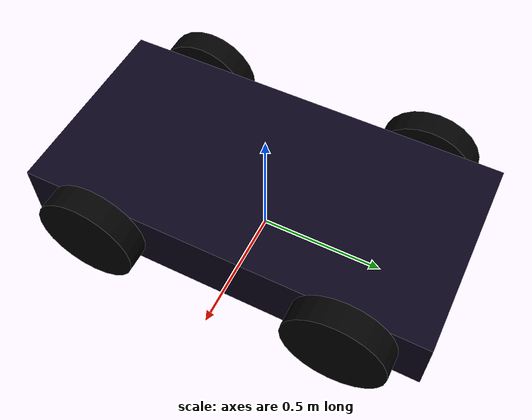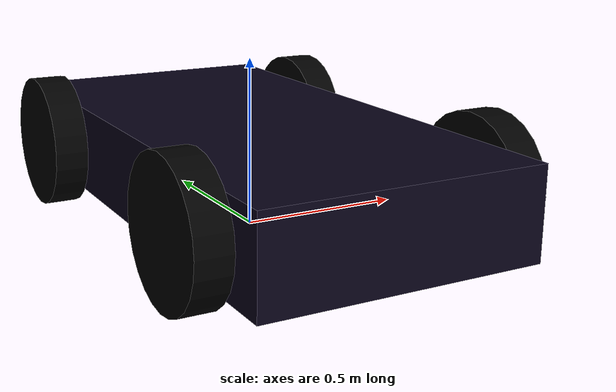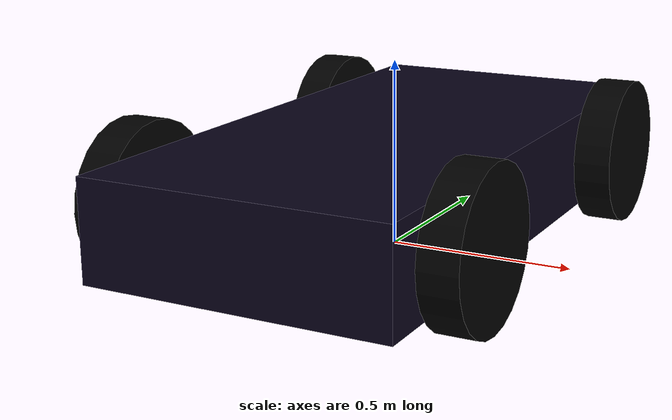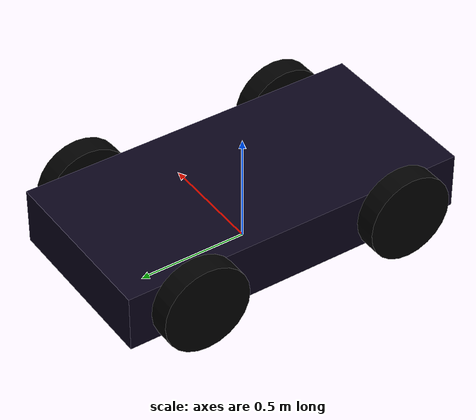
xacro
<?xml version="1.0"?>
<robot name="rbo" xmlns:xacro="http://www.ros.org/wiki/xacro">

<xacro:include filename="$(find ros_urdf_learn)/urdf/rbo1.urdf.xacro" />

 <!--   #plagin#    -->
 <gazebo>
     <plugin name="gazebo_ros_control" filename="libgazebo_ros_control.so">
         <robotNamespace>/</robotNamespace>
         <robotSimType>gazebo_ros_control/DefaultRobotHWSim</robotSimType>
     </plugin>
 </gazebo>

  <gazebo>
        <plugin name="differential_drive_controller" filename="libgazebo_ros_diff_drive.so">
            <alwaysOn>true</alwaysOn>
            <updateRate>50.0</updateRate>
            <leftFrontJoint>car_base_wheel2</leftFrontJoint>
            <rightFrontJoint>car_base_wheel4</rightFrontJoint>
            <leftRearJoint>car_base_wheel1</leftRearJoint>
            <rightRearJoint>car_base_wheel3</rightRearJoint>
            <wheelSeparation>0.8</wheelSeparation>
            <wheelDiameter>0.2</wheelDiameter>
            <torque>1.0</torque>
            <commandTopic>cmd_vel</commandTopic>
            <odometryTopic>odom</odometryTopic>
            <odometryFrame>odom</odometryFrame>
            <robotBaseFrame>base_link</robotBaseFrame>
            <publishWheelTF>true</publishWheelTF>
            <publishWheelJointState>true</publishWheelJointState>
            <legecyMode>false</legecyMode>
            <wheelAcceleration>1</wheelAcceleration>
        </plugin>
    </gazebo>

</robot>

  <gazebo>
        <plugin name="differential_drive_controller" filename="../opt/ros/noetic/lib/libgazebo_ros_diff_drive.so">
            <alwaysOn>true</alwaysOn>
            <updateRate>50.0</updateRate>
            <leftJoint>car_base_wheel2</leftJoint>
            <rightJoint>car_base_wheel4</rightJoint>
            <wheelSeparation>0.8</wheelSeparation>
            <wheelDiameter>0.2</wheelDiameter>
            <torque>1.0</torque>
            <commandTopic>cmd_vel</commandTopic>
            <odometryTopic>odom</odometryTopic>
            <odometryFrame>odom</odometryFrame>
            <robotBaseFrame>base_link</robotBaseFrame>
            <publishWheelTF>true</publishWheelTF>
            <publishWheelJointState>true</publishWheelJointState>
            <legecyMode>false</legecyMode>
            <wheelAcceleration>1</wheelAcceleration>
        </plugin>
    </gazebo>

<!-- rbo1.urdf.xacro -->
<robot name="rbo" xmlns:xacro="http://www.ros.org/wiki/xacro">
    <!-- variable -->
    <xacro:property name="PI" value="3.1415926"/>
    <xacro:property name="car_width" value="0.8"/>
    <xacro:property name="car_length" value="1.6"/>
    <xacro:property name="car_height" value="0.26"/>
    <xacro:property name="wheel_length" value="0.1"/>
    <xacro:property name="wheel_radius" value="0.2"/>
    <xacro:property name="wheel_origin_xyz" value="0.0 0.0 0.0"/>
    <xacro:property name="wheel_origin_rpy" value="0.0 ${PI/2} 0.0"/>

<material name="Black">
	<color rgba="0 0 0 1"/>
</material>

    <!-- macro -->
    <xacro:macro name="default_inertial" params="mass">
        <inertial>
            <mass value="${mass}" />
            <inertia ixx="1.0" ixy="0.0" ixz="0.0" iyy="1.0" iyz="0.0" izz="1.0" />
        </inertial>
    </xacro:macro>

    <xacro:macro name="box_geometry" params="width length height">
        <geometry>
            <box size="${width} ${length} ${height}"/>
        </geometry>
    </xacro:macro>

    <xacro:macro name="cylinder_geometry" params="length radius">
        <geometry>
            <cylinder length="${length}" radius="${radius}"/>
        </geometry>
    </xacro:macro>

    <xacro:macro name="default_origin" params="xyz rpyaw">
        <origin xyz="${xyz}" rpy="${rpyaw}"/>
    </xacro:macro>

    <!-- links -->
    <link name="car_link">
        <visual>
            <xacro:box_geometry width="${car_width}" length="${car_length}" height="${car_height}"/>
		<material name="2">
		     <color rgba="9 3 25 0.8"/>
		</material>
        </visual>
        <collision>
            <xacro:box_geometry width="${car_width}" length="${car_length}" height="${car_height}"/>
        </collision>
        <xacro:default_inertial mass="5.0"/>
    </link>

    <link name="wheel_LB">
        <visual>
            <xacro:cylinder_geometry length="${wheel_length}" radius="${wheel_radius}"/>
            <xacro:default_origin xyz="${wheel_origin_xyz}" rpyaw="${wheel_origin_rpy}" />
            <material name="Black"/>
        </visual>
        <collision>
            <xacro:cylinder_geometry length="${wheel_length}" radius="${wheel_radius}"/>
            <xacro:default_origin xyz="${wheel_origin_xyz}" rpyaw="${wheel_origin_rpy}" />
        </collision>
        <xacro:default_inertial mass="0.2"/>
    </link>

    <link name="wheel_LF">
        <visual>
            <xacro:cylinder_geometry length="${wheel_length}" radius="${wheel_radius}"/>
            <xacro:default_origin xyz="${wheel_origin_xyz}" rpyaw="${wheel_origin_rpy}" />
            <material name="Black"/>
        </visual>
        <collision>
            <xacro:cylinder_geometry length="${wheel_length}" radius="${wheel_radius}"/>
            <xacro:default_origin xyz="${wheel_origin_xyz}" rpyaw="${wheel_origin_rpy}" />
        </collision>
        <xacro:default_inertial mass="0.2"/>
    </link>

    <link name="wheel_RB">
        <visual>
            <xacro:cylinder_geometry length="${wheel_length}" radius="${wheel_radius}"/>
            <xacro:default_origin xyz="${wheel_origin_xyz}" rpyaw="${wheel_origin_rpy}" />
            <material name="Black"/>
        </visual>
        <collision>
            <xacro:cylinder_geometry length="${wheel_length}" radius="${wheel_radius}"/>
            <xacro:default_origin xyz="${wheel_origin_xyz}" rpyaw="${wheel_origin_rpy}" />
        </collision>
        <xacro:default_inertial mass="0.2"/>
    </link>

    <link name="wheel_RF">
        <visual>
            <xacro:cylinder_geometry length="${wheel_length}" radius="${wheel_radius}"/>
            <xacro:default_origin xyz="${wheel_origin_xyz}" rpyaw="${wheel_origin_rpy}" />
            <material name="Black"/>
        </visual>
        <collision>
            <xacro:cylinder_geometry length="${wheel_length}" radius="${wheel_radius}"/>
            <xacro:default_origin xyz="${wheel_origin_xyz}" rpyaw="${wheel_origin_rpy}" />
        </collision>
        <xacro:default_inertial mass="0.2"/>
    </link>

    <!-- joints -->
    <joint name="car_base_wheel1" type="continuous">
        <origin xyz="${(wheel_length+car_width)/2.0} 0.5 0.0" rpy="0.0 0.0 0.0"/>
        <parent link="car_link"/>
        <child link="wheel_LB"/>
        <axis xyz="1.0 0.0 0.0"/>
    </joint>

    <joint name="car_base_wheel2" type="continuous">
        <origin xyz="${(wheel_length+car_width)/2.0} -0.5 0.0" rpy="0.0 0.0 0.0"/>
        <parent link="car_link"/>
        <child link="wheel_LF"/>
        <axis xyz="1.0 0.0 0.0"/>
    </joint>

    <joint name="car_base_wheel3" type="continuous">
        <origin xyz="${(wheel_length+car_width)/-2.0} 0.5 0.0" rpy="0.0 0.0 0.0"/>
        <parent link="car_link"/>
        <child link="wheel_RB"/>
        <axis xyz="1.0 0.0 0.0"/>
    </joint>

    <joint name="car_base_wheel4" type="continuous">
        <origin xyz="${(wheel_length+car_width)/-2.0} -0.5 0.0" rpy="0.0 0.0 0.0"/>
        <parent link="car_link"/>
        <child link="wheel_RF"/>
        <axis xyz="1.0 0.0 0.0"/>
    </joint>

    <!-- base_link -->
    <link name="base_link"/>
    <joint name="base_link_car" type="fixed">
        <origin xyz="0.0 0.0 ${wheel_radius}" rpy="0.0 0.0 0.0"/>
        <parent link="base_link"/>
        <child link="car_link"/>
    </joint>

<!-- transmission -->

        <transmission name="wheel_LB_transmission">
            <type>transmission_interface/SimpleTransmission</type>
            <joint name="car_base_wheel1">
                <hardwareInterface>hardware_interface/VelocityJointInterface</hardwareInterface>
            </joint>
            <actuator name="LB_motor">
                <mechanicalReducction>1</mechanicalReducction>
            </actuator>
        </transmission>

        <transmission name="wheel_LF_transmission">
            <type>transmission_interface/SimpleTransmission</type>
            <joint name="car_base_wheel2">
                <hardwareInterface>hardware_interface/VelocityJointInterface</hardwareInterface>
            </joint>
            <actuator name="LF_motor">
                <mechanicalReducction>1</mechanicalReducction>
            </actuator>
        </transmission>

        <transmission name="wheel_RB_transmission">
            <type>transmission_interface/SimpleTransmission</type>
            <joint name="car_base_wheel3">
                <hardwareInterface>hardware_interface/VelocityJointInterface</hardwareInterface>
            </joint>
            <actuator name="RB_motor">
                <mechanicalReducction>1</mechanicalReducction>
            </actuator>
        </transmission>

        <transmission name="wheel_RF_transmission">
            <type>transmission_interface/SimpleTransmission</type>
            <joint name="car_base_wheel4">
                <hardwareInterface>hardware_interface/VelocityJointInterface</hardwareInterface>
            </joint>
            <actuator name="RF_motor">
                <mechanicalReducction>1</mechanicalReducction>
            </actuator>
        </transmission>

<!-- gazebo -->
<gazebo reference="car_link">
    <material>Gazebo/PaintedWall</material>
    <mu1>0.6</mu1>
    <mu2>0.5</mu2>
</gazebo>
<gazebo reference="wheel_LB">
    <material>Gazebo/WoodFloor</material>
</gazebo>
<gazebo reference="wheel_LF">
    <material>Gazebo/WoodFloor</material>
</gazebo>
<gazebo reference="wheel_RB">
    <material>Gazebo/WoodFloor</material>
</gazebo>
<gazebo reference="wheel_RF">
    <material>Gazebo/WoodFloor</material>
</gazebo>
 <!--   #plagin#    -->

  <gazebo>
        <plugin name="differential_drive_controller" filename="/opt/ros/noetic/lib/libgazebo_ros_skid_steer_drive.so">
            <robotNamespace>/</robotNamespace>
            <alwaysOn>true</alwaysOn>
            <updateRate>50.0</updateRate>
            <leftFrontJoint>car_base_wheel2</leftFrontJoint>
            <rightFrontJoint>car_base_wheel4</rightFrontJoint>
            <leftRearJoint>car_base_wheel1</leftRearJoint>
            <rightRearJoint>car_base_wheel3</rightRearJoint>
            <wheelSeparation>0.8</wheelSeparation>
            <wheelDiameter>0.2</wheelDiameter>
            <torque>1.0</torque>
            <commandTopic>cmd_vel</commandTopic>
            <odometryTopic>odom</odometryTopic>
            <odometryFrame>odom</odometryFrame>
            <robotBaseFrame>base_link</robotBaseFrame>
            <broadcastTF>1</broadcastTF>
            <publishWheelTF>true</publishWheelTF>
            <publishWheelJointState>true</publishWheelJointState>
            <legecyMode>false</legecyMode>
            <wheelAcceleration>1</wheelAcceleration>
        </plugin>

       <plugin name="gazebo_ros_control" filename="/opt/ros/noetic/lib/libgazebo_ros_control.so">
            <robotNamespace>/</robotNamespace>
       </plugin>

  </gazebo>

</robot>
